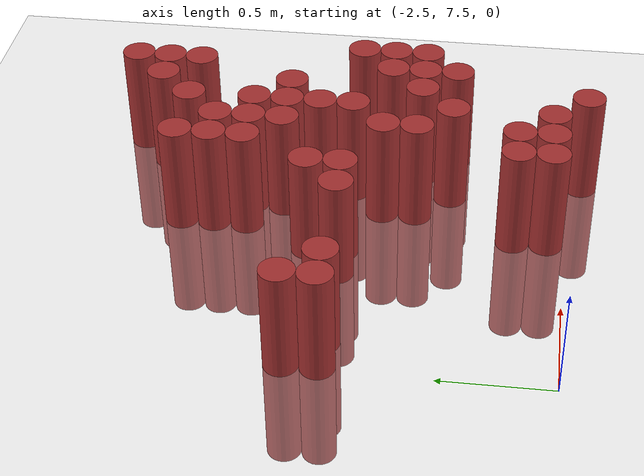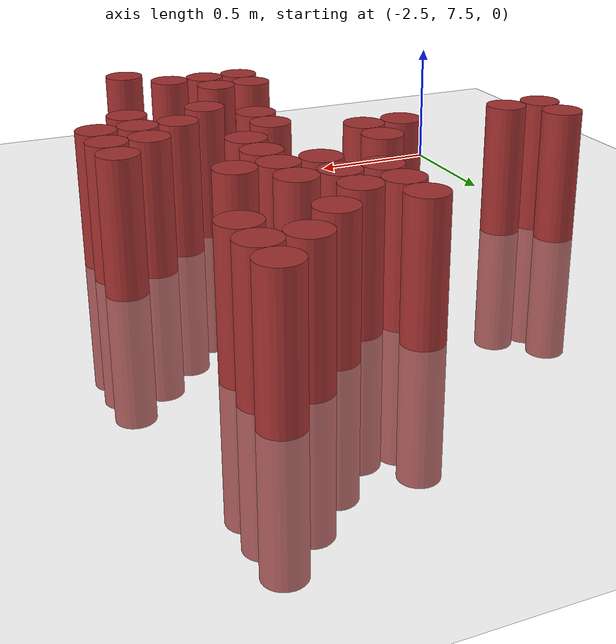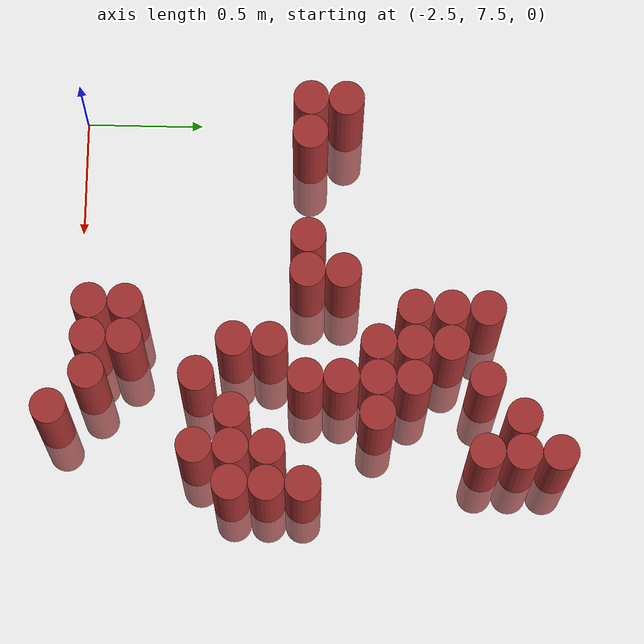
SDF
<sdf version="1.6">
 <world name="default">
  <model name="ground_plane">
   <static>1</static>
   <link name="link">
    <collision name="collision">
     <geometry><plane><normal>0 0 1</normal><size>100 100</size></plane></geometry>
     <surface><friction><ode><mu>100</mu><mu2>50</mu2></ode></friction></surface>
    </collision>
    <visual name="visual">
     <cast_shadows>0</cast_shadows>
     <geometry><plane><normal>0 0 1</normal><size>100 100</size></plane></geometry>
     <material>
      <script><uri>file://media/materials/scripts/gazebo.material</uri><name>Gazebo/Grey</name></script>
     </material>
    </visual>
   </link>
  </model>
  <model name="unit_cylinder_196">
   <static>1</static>
   <pose>-2.475000 8.475000 0.000000 0.000000 0.000000 0.000000</pose>
   <link name="link">
    <inertial>
     <mass>1</mass>
     <inertia><ixx>0.145833</ixx><ixy>0</ixy><ixz>0</ixz><iyy>0.145833</iyy><iyz>0</iyz><izz>0.125</izz></inertia>
    </inertial>
    <collision name="collision">
     <geometry><cylinder><radius>0.075000</radius><length>1</length></cylinder></geometry>
    </collision>
    <visual name="visual">
     <geometry><cylinder><radius>0.075000</radius><length>1</length></cylinder></geometry>
     <material>
      <ambient>0.648000 0.192000 0.192000 1</ambient>
      <diffuse>0.648000 0.192000 0.192000 1</diffuse>
     </material>
     <material>
      <script><name>Gazebo/Grey</name><uri>file://media/materials/scripts/gazebo.material</uri></script>
     </material>
    </visual>
    <sensor name="sensor_contact" type="contact"><contact><collision>collision</collision></contact></sensor>
   </link>
   <plugin filename="gz-sim-touchplugin-system" name="gz::sim::systems::TouchPlugin">
    <target>robot</target>
    <namespace>robot</namespace>
    <time>0.001</time>
    <enabled>true</enabled>
   </plugin>
  </model>
  <model name="unit_cylinder_197">
   <static>1</static>
   <pose>-2.475000 8.625000 0.000000 0.000000 0.000000 0.000000</pose>
   <link name="link">
    <inertial>
     <mass>1</mass>
     <inertia><ixx>0.145833</ixx><ixy>0</ixy><ixz>0</ixz><iyy>0.145833</iyy><iyz>0</iyz><izz>0.125</izz></inertia>
    </inertial>
    <collision name="collision">
     <geometry><cylinder><radius>0.075000</radius><length>1</length></cylinder></geometry>
    </collision>
    <visual name="visual">
     <geometry><cylinder><radius>0.075000</radius><length>1</length></cylinder></geometry>
     <material>
      <ambient>0.648000 0.192000 0.192000 1</ambient>
      <diffuse>0.648000 0.192000 0.192000 1</diffuse>
     </material>
     <material>
      <script><name>Gazebo/Grey</name><uri>file://media/materials/scripts/gazebo.material</uri></script>
     </material>
    </visual>
    <sensor name="sensor_contact" type="contact"><contact><collision>collision</collision></contact></sensor>
   </link>
   <plugin filename="gz-sim-touchplugin-system" name="gz::sim::systems::TouchPlugin">
    <target>robot</target>
    <namespace>robot</namespace>
    <time>0.001</time>
    <enabled>true</enabled>
   </plugin>
  </model>
  <model name="unit_cylinder_201">
   <static>1</static>
   <pose>-2.325000 8.475000 0.000000 0.000000 0.000000 0.000000</pose>
   <link name="link">
    <inertial>
     <mass>1</mass>
     <inertia><ixx>0.145833</ixx><ixy>0</ixy><ixz>0</ixz><iyy>0.145833</iyy><iyz>0</iyz><izz>0.125</izz></inertia>
    </inertial>
    <collision name="collision">
     <geometry><cylinder><radius>0.075000</radius><length>1</length></cylinder></geometry>
    </collision>
    <visual name="visual">
     <geometry><cylinder><radius>0.075000</radius><length>1</length></cylinder></geometry>
     <material>
      <ambient>0.648000 0.192000 0.192000 1</ambient>
      <diffuse>0.648000 0.192000 0.192000 1</diffuse>
     </material>
     <material>
      <script><name>Gazebo/Grey</name><uri>file://media/materials/scripts/gazebo.material</uri></script>
     </material>
    </visual>
    <sensor name="sensor_contact" type="contact"><contact><collision>collision</collision></contact></sensor>
   </link>
   <plugin filename="gz-sim-touchplugin-system" name="gz::sim::systems::TouchPlugin">
    <target>robot</target>
    <namespace>robot</namespace>
    <time>0.001</time>
    <enabled>true</enabled>
   </plugin>
  </model>
  <model name="unit_cylinder_217">
   <static>1</static>
   <pose>-1.875000 8.475000 0.000000 0.000000 0.000000 0.000000</pose>
   <link name="link">
    <inertial>
     <mass>1</mass>
     <inertia><ixx>0.145833</ixx><ixy>0</ixy><ixz>0</ixz><iyy>0.145833</iyy><iyz>0</iyz><izz>0.125</izz></inertia>
    </inertial>
    <collision name="collision">
     <geometry><cylinder><radius>0.075000</radius><length>1</length></cylinder></geometry>
    </collision>
    <visual name="visual">
     <geometry><cylinder><radius>0.075000</radius><length>1</length></cylinder></geometry>
     <material>
      <ambient>0.648000 0.192000 0.192000 1</ambient>
      <diffuse>0.648000 0.192000 0.192000 1</diffuse>
     </material>
     <material>
      <script><name>Gazebo/Grey</name><uri>file://media/materials/scripts/gazebo.material</uri></script>
     </material>
    </visual>
    <sensor name="sensor_contact" type="contact"><contact><collision>collision</collision></contact></sensor>
   </link>
   <plugin filename="gz-sim-touchplugin-system" name="gz::sim::systems::TouchPlugin">
    <target>robot</target>
    <namespace>robot</namespace>
    <time>0.001</time>
    <enabled>true</enabled>
   </plugin>
  </model>
  <model name="unit_cylinder_222">
   <static>1</static>
   <pose>-1.725000 8.475000 0.000000 0.000000 0.000000 0.000000</pose>
   <link name="link">
    <inertial>
     <mass>1</mass>
     <inertia><ixx>0.145833</ixx><ixy>0</ixy><ixz>0</ixz><iyy>0.145833</iyy><iyz>0</iyz><izz>0.125</izz></inertia>
    </inertial>
    <collision name="collision">
     <geometry><cylinder><radius>0.075000</radius><length>1</length></cylinder></geometry>
    </collision>
    <visual name="visual">
     <geometry><cylinder><radius>0.075000</radius><length>1</length></cylinder></geometry>
     <material>
      <ambient>0.648000 0.192000 0.192000 1</ambient>
      <diffuse>0.648000 0.192000 0.192000 1</diffuse>
     </material>
     <material>
      <script><name>Gazebo/Grey</name><uri>file://media/materials/scripts/gazebo.material</uri></script>
     </material>
    </visual>
    <sensor name="sensor_contact" type="contact"><contact><collision>collision</collision></contact></sensor>
   </link>
   <plugin filename="gz-sim-touchplugin-system" name="gz::sim::systems::TouchPlugin">
    <target>robot</target>
    <namespace>robot</namespace>
    <time>0.001</time>
    <enabled>true</enabled>
   </plugin>
  </model>
  <model name="unit_cylinder_223">
   <static>1</static>
   <pose>-1.725000 8.625000 0.000000 0.000000 0.000000 0.000000</pose>
   <link name="link">
    <inertial>
     <mass>1</mass>
     <inertia><ixx>0.145833</ixx><ixy>0</ixy><ixz>0</ixz><iyy>0.145833</iyy><iyz>0</iyz><izz>0.125</izz></inertia>
    </inertial>
    <collision name="collision">
     <geometry><cylinder><radius>0.075000</radius><length>1</length></cylinder></geometry>
    </collision>
    <visual name="visual">
     <geometry><cylinder><radius>0.075000</radius><length>1</length></cylinder></geometry>
     <material>
      <ambient>0.648000 0.192000 0.192000 1</ambient>
      <diffuse>0.648000 0.192000 0.192000 1</diffuse>
     </material>
     <material>
      <script><name>Gazebo/Grey</name><uri>file://media/materials/scripts/gazebo.material</uri></script>
     </material>
    </visual>
    <sensor name="sensor_contact" type="contact"><contact><collision>collision</collision></contact></sensor>
   </link>
   <plugin filename="gz-sim-touchplugin-system" name="gz::sim::systems::TouchPlugin">
    <target>robot</target>
    <namespace>robot</namespace>
    <time>0.001</time>
    <enabled>true</enabled>
   </plugin>
  </model>
  <model name="unit_cylinder_231">
   <static>1</static>
   <pose>-1.575000 7.575000 0.000000 0.000000 0.000000 0.000000</pose>
   <link name="link">
    <inertial>
     <mass>1</mass>
     <inertia><ixx>0.145833</ixx><ixy>0</ixy><ixz>0</ixz><iyy>0.145833</iyy><iyz>0</iyz><izz>0.125</izz></inertia>
    </inertial>
    <collision name="collision">
     <geometry><cylinder><radius>0.075000</radius><length>1</length></cylinder></geometry>
    </collision>
    <visual name="visual">
     <geometry><cylinder><radius>0.075000</radius><length>1</length></cylinder></geometry>
     <material>
      <ambient>0.648000 0.192000 0.192000 1</ambient>
      <diffuse>0.648000 0.192000 0.192000 1</diffuse>
     </material>
     <material>
      <script><name>Gazebo/Grey</name><uri>file://media/materials/scripts/gazebo.material</uri></script>
     </material>
    </visual>
    <sensor name="sensor_contact" type="contact"><contact><collision>collision</collision></contact></sensor>
   </link>
   <plugin filename="gz-sim-touchplugin-system" name="gz::sim::systems::TouchPlugin">
    <target>robot</target>
    <namespace>robot</namespace>
    <time>0.001</time>
    <enabled>true</enabled>
   </plugin>
  </model>
  <model name="unit_cylinder_232">
   <static>1</static>
   <pose>-1.575000 7.725000 0.000000 0.000000 0.000000 0.000000</pose>
   <link name="link">
    <inertial>
     <mass>1</mass>
     <inertia><ixx>0.145833</ixx><ixy>0</ixy><ixz>0</ixz><iyy>0.145833</iyy><iyz>0</iyz><izz>0.125</izz></inertia>
    </inertial>
    <collision name="collision">
     <geometry><cylinder><radius>0.075000</radius><length>1</length></cylinder></geometry>
    </collision>
    <visual name="visual">
     <geometry><cylinder><radius>0.075000</radius><length>1</length></cylinder></geometry>
     <material>
      <ambient>0.648000 0.192000 0.192000 1</ambient>
      <diffuse>0.648000 0.192000 0.192000 1</diffuse>
     </material>
     <material>
      <script><name>Gazebo/Grey</name><uri>file://media/materials/scripts/gazebo.material</uri></script>
     </material>
    </visual>
    <sensor name="sensor_contact" type="contact"><contact><collision>collision</collision></contact></sensor>
   </link>
   <plugin filename="gz-sim-touchplugin-system" name="gz::sim::systems::TouchPlugin">
    <target>robot</target>
    <namespace>robot</namespace>
    <time>0.001</time>
    <enabled>true</enabled>
   </plugin>
  </model>
  <model name="unit_cylinder_233">
   <static>1</static>
   <pose>-1.575000 8.925000 0.000000 0.000000 0.000000 0.000000</pose>
   <link name="link">
    <inertial>
     <mass>1</mass>
     <inertia><ixx>0.145833</ixx><ixy>0</ixy><ixz>0</ixz><iyy>0.145833</iyy><iyz>0</iyz><izz>0.125</izz></inertia>
    </inertial>
    <collision name="collision">
     <geometry><cylinder><radius>0.075000</radius><length>1</length></cylinder></geometry>
    </collision>
    <visual name="visual">
     <geometry><cylinder><radius>0.075000</radius><length>1</length></cylinder></geometry>
     <material>
      <ambient>0.648000 0.192000 0.192000 1</ambient>
      <diffuse>0.648000 0.192000 0.192000 1</diffuse>
     </material>
     <material>
      <script><name>Gazebo/Grey</name><uri>file://media/materials/scripts/gazebo.material</uri></script>
     </material>
    </visual>
    <sensor name="sensor_contact" type="contact"><contact><collision>collision</collision></contact></sensor>
   </link>
   <plugin filename="gz-sim-touchplugin-system" name="gz::sim::systems::TouchPlugin">
    <target>robot</target>
    <namespace>robot</namespace>
    <time>0.001</time>
    <enabled>true</enabled>
   </plugin>
  </model>
  <model name="unit_cylinder_234">
   <static>1</static>
   <pose>-1.575000 9.075000 0.000000 0.000000 0.000000 0.000000</pose>
   <link name="link">
    <inertial>
     <mass>1</mass>
     <inertia><ixx>0.145833</ixx><ixy>0</ixy><ixz>0</ixz><iyy>0.145833</iyy><iyz>0</iyz><izz>0.125</izz></inertia>
    </inertial>
    <collision name="collision">
     <geometry><cylinder><radius>0.075000</radius><length>1</length></cylinder></geometry>
    </collision>
    <visual name="visual">
     <geometry><cylinder><radius>0.075000</radius><length>1</length></cylinder></geometry>
     <material>
      <ambient>0.648000 0.192000 0.192000 1</ambient>
      <diffuse>0.648000 0.192000 0.192000 1</diffuse>
     </material>
     <material>
      <script><name>Gazebo/Grey</name><uri>file://media/materials/scripts/gazebo.material</uri></script>
     </material>
    </visual>
    <sensor name="sensor_contact" type="contact"><contact><collision>collision</collision></contact></sensor>
   </link>
   <plugin filename="gz-sim-touchplugin-system" name="gz::sim::systems::TouchPlugin">
    <target>robot</target>
    <namespace>robot</namespace>
    <time>0.001</time>
    <enabled>true</enabled>
   </plugin>
  </model>
  <model name="unit_cylinder_235">
   <static>1</static>
   <pose>-1.575000 9.225000 0.000000 0.000000 0.000000 0.000000</pose>
   <link name="link">
    <inertial>
     <mass>1</mass>
     <inertia><ixx>0.145833</ixx><ixy>0</ixy><ixz>0</ixz><iyy>0.145833</iyy><iyz>0</iyz><izz>0.125</izz></inertia>
    </inertial>
    <collision name="collision">
     <geometry><cylinder><radius>0.075000</radius><length>1</length></cylinder></geometry>
    </collision>
    <visual name="visual">
     <geometry><cylinder><radius>0.075000</radius><length>1</length></cylinder></geometry>
     <material>
      <ambient>0.648000 0.192000 0.192000 1</ambient>
      <diffuse>0.648000 0.192000 0.192000 1</diffuse>
     </material>
     <material>
      <script><name>Gazebo/Grey</name><uri>file://media/materials/scripts/gazebo.material</uri></script>
     </material>
    </visual>
    <sensor name="sensor_contact" type="contact"><contact><collision>collision</collision></contact></sensor>
   </link>
   <plugin filename="gz-sim-touchplugin-system" name="gz::sim::systems::TouchPlugin">
    <target>robot</target>
    <namespace>robot</namespace>
    <time>0.001</time>
    <enabled>true</enabled>
   </plugin>
  </model>
  <model name="unit_cylinder_239">
   <static>1</static>
   <pose>-1.425000 7.575000 0.000000 0.000000 0.000000 0.000000</pose>
   <link name="link">
    <inertial>
     <mass>1</mass>
     <inertia><ixx>0.145833</ixx><ixy>0</ixy><ixz>0</ixz><iyy>0.145833</iyy><iyz>0</iyz><izz>0.125</izz></inertia>
    </inertial>
    <collision name="collision">
     <geometry><cylinder><radius>0.075000</radius><length>1</length></cylinder></geometry>
    </collision>
    <visual name="visual">
     <geometry><cylinder><radius>0.075000</radius><length>1</length></cylinder></geometry>
     <material>
      <ambient>0.648000 0.192000 0.192000 1</ambient>
      <diffuse>0.648000 0.192000 0.192000 1</diffuse>
     </material>
     <material>
      <script><name>Gazebo/Grey</name><uri>file://media/materials/scripts/gazebo.material</uri></script>
     </material>
    </visual>
    <sensor name="sensor_contact" type="contact"><contact><collision>collision</collision></contact></sensor>
   </link>
   <plugin filename="gz-sim-touchplugin-system" name="gz::sim::systems::TouchPlugin">
    <target>robot</target>
    <namespace>robot</namespace>
    <time>0.001</time>
    <enabled>true</enabled>
   </plugin>
  </model>
  <model name="unit_cylinder_240">
   <static>1</static>
   <pose>-1.425000 7.725000 0.000000 0.000000 0.000000 0.000000</pose>
   <link name="link">
    <inertial>
     <mass>1</mass>
     <inertia><ixx>0.145833</ixx><ixy>0</ixy><ixz>0</ixz><iyy>0.145833</iyy><iyz>0</iyz><izz>0.125</izz></inertia>
    </inertial>
    <collision name="collision">
     <geometry><cylinder><radius>0.075000</radius><length>1</length></cylinder></geometry>
    </collision>
    <visual name="visual">
     <geometry><cylinder><radius>0.075000</radius><length>1</length></cylinder></geometry>
     <material>
      <ambient>0.648000 0.192000 0.192000 1</ambient>
      <diffuse>0.648000 0.192000 0.192000 1</diffuse>
     </material>
     <material>
      <script><name>Gazebo/Grey</name><uri>file://media/materials/scripts/gazebo.material</uri></script>
     </material>
    </visual>
    <sensor name="sensor_contact" type="contact"><contact><collision>collision</collision></contact></sensor>
   </link>
   <plugin filename="gz-sim-touchplugin-system" name="gz::sim::systems::TouchPlugin">
    <target>robot</target>
    <namespace>robot</namespace>
    <time>0.001</time>
    <enabled>true</enabled>
   </plugin>
  </model>
  <model name="unit_cylinder_241">
   <static>1</static>
   <pose>-1.425000 8.175000 0.000000 0.000000 0.000000 0.000000</pose>
   <link name="link">
    <inertial>
     <mass>1</mass>
     <inertia><ixx>0.145833</ixx><ixy>0</ixy><ixz>0</ixz><iyy>0.145833</iyy><iyz>0</iyz><izz>0.125</izz></inertia>
    </inertial>
    <collision name="collision">
     <geometry><cylinder><radius>0.075000</radius><length>1</length></cylinder></geometry>
    </collision>
    <visual name="visual">
     <geometry><cylinder><radius>0.075000</radius><length>1</length></cylinder></geometry>
     <material>
      <ambient>0.648000 0.192000 0.192000 1</ambient>
      <diffuse>0.648000 0.192000 0.192000 1</diffuse>
     </material>
     <material>
      <script><name>Gazebo/Grey</name><uri>file://media/materials/scripts/gazebo.material</uri></script>
     </material>
    </visual>
    <sensor name="sensor_contact" type="contact"><contact><collision>collision</collision></contact></sensor>
   </link>
   <plugin filename="gz-sim-touchplugin-system" name="gz::sim::systems::TouchPlugin">
    <target>robot</target>
    <namespace>robot</namespace>
    <time>0.001</time>
    <enabled>true</enabled>
   </plugin>
  </model>
  <model name="unit_cylinder_242">
   <static>1</static>
   <pose>-1.425000 8.325000 0.000000 0.000000 0.000000 0.000000</pose>
   <link name="link">
    <inertial>
     <mass>1</mass>
     <inertia><ixx>0.145833</ixx><ixy>0</ixy><ixz>0</ixz><iyy>0.145833</iyy><iyz>0</iyz><izz>0.125</izz></inertia>
    </inertial>
    <collision name="collision">
     <geometry><cylinder><radius>0.075000</radius><length>1</length></cylinder></geometry>
    </collision>
    <visual name="visual">
     <geometry><cylinder><radius>0.075000</radius><length>1</length></cylinder></geometry>
     <material>
      <ambient>0.648000 0.192000 0.192000 1</ambient>
      <diffuse>0.648000 0.192000 0.192000 1</diffuse>
     </material>
     <material>
      <script><name>Gazebo/Grey</name><uri>file://media/materials/scripts/gazebo.material</uri></script>
     </material>
    </visual>
    <sensor name="sensor_contact" type="contact"><contact><collision>collision</collision></contact></sensor>
   </link>
   <plugin filename="gz-sim-touchplugin-system" name="gz::sim::systems::TouchPlugin">
    <target>robot</target>
    <namespace>robot</namespace>
    <time>0.001</time>
    <enabled>true</enabled>
   </plugin>
  </model>
  <model name="unit_cylinder_243">
   <static>1</static>
   <pose>-1.425000 8.775000 0.000000 0.000000 0.000000 0.000000</pose>
   <link name="link">
    <inertial>
     <mass>1</mass>
     <inertia><ixx>0.145833</ixx><ixy>0</ixy><ixz>0</ixz><iyy>0.145833</iyy><iyz>0</iyz><izz>0.125</izz></inertia>
    </inertial>
    <collision name="collision">
     <geometry><cylinder><radius>0.075000</radius><length>1</length></cylinder></geometry>
    </collision>
    <visual name="visual">
     <geometry><cylinder><radius>0.075000</radius><length>1</length></cylinder></geometry>
     <material>
      <ambient>0.648000 0.192000 0.192000 1</ambient>
      <diffuse>0.648000 0.192000 0.192000 1</diffuse>
     </material>
     <material>
      <script><name>Gazebo/Grey</name><uri>file://media/materials/scripts/gazebo.material</uri></script>
     </material>
    </visual>
    <sensor name="sensor_contact" type="contact"><contact><collision>collision</collision></contact></sensor>
   </link>
   <plugin filename="gz-sim-touchplugin-system" name="gz::sim::systems::TouchPlugin">
    <target>robot</target>
    <namespace>robot</namespace>
    <time>0.001</time>
    <enabled>true</enabled>
   </plugin>
  </model>
  <model name="unit_cylinder_244">
   <static>1</static>
   <pose>-1.425000 8.925000 0.000000 0.000000 0.000000 0.000000</pose>
   <link name="link">
    <inertial>
     <mass>1</mass>
     <inertia><ixx>0.145833</ixx><ixy>0</ixy><ixz>0</ixz><iyy>0.145833</iyy><iyz>0</iyz><izz>0.125</izz></inertia>
    </inertial>
    <collision name="collision">
     <geometry><cylinder><radius>0.075000</radius><length>1</length></cylinder></geometry>
    </collision>
    <visual name="visual">
     <geometry><cylinder><radius>0.075000</radius><length>1</length></cylinder></geometry>
     <material>
      <ambient>0.648000 0.192000 0.192000 1</ambient>
      <diffuse>0.648000 0.192000 0.192000 1</diffuse>
     </material>
     <material>
      <script><name>Gazebo/Grey</name><uri>file://media/materials/scripts/gazebo.material</uri></script>
     </material>
    </visual>
    <sensor name="sensor_contact" type="contact"><contact><collision>collision</collision></contact></sensor>
   </link>
   <plugin filename="gz-sim-touchplugin-system" name="gz::sim::systems::TouchPlugin">
    <target>robot</target>
    <namespace>robot</namespace>
    <time>0.001</time>
    <enabled>true</enabled>
   </plugin>
  </model>
  <model name="unit_cylinder_245">
   <static>1</static>
   <pose>-1.425000 9.075000 0.000000 0.000000 0.000000 0.000000</pose>
   <link name="link">
    <inertial>
     <mass>1</mass>
     <inertia><ixx>0.145833</ixx><ixy>0</ixy><ixz>0</ixz><iyy>0.145833</iyy><iyz>0</iyz><izz>0.125</izz></inertia>
    </inertial>
    <collision name="collision">
     <geometry><cylinder><radius>0.075000</radius><length>1</length></cylinder></geometry>
    </collision>
    <visual name="visual">
     <geometry><cylinder><radius>0.075000</radius><length>1</length></cylinder></geometry>
     <material>
      <ambient>0.648000 0.192000 0.192000 1</ambient>
      <diffuse>0.648000 0.192000 0.192000 1</diffuse>
     </material>
     <material>
      <script><name>Gazebo/Grey</name><uri>file://media/materials/scripts/gazebo.material</uri></script>
     </material>
    </visual>
    <sensor name="sensor_contact" type="contact"><contact><collision>collision</collision></contact></sensor>
   </link>
   <plugin filename="gz-sim-touchplugin-system" name="gz::sim::systems::TouchPlugin">
    <target>robot</target>
    <namespace>robot</namespace>
    <time>0.001</time>
    <enabled>true</enabled>
   </plugin>
  </model>
  <model name="unit_cylinder_249">
   <static>1</static>
   <pose>-1.275000 7.575000 0.000000 0.000000 0.000000 0.000000</pose>
   <link name="link">
    <inertial>
     <mass>1</mass>
     <inertia><ixx>0.145833</ixx><ixy>0</ixy><ixz>0</ixz><iyy>0.145833</iyy><iyz>0</iyz><izz>0.125</izz></inertia>
    </inertial>
    <collision name="collision">
     <geometry><cylinder><radius>0.075000</radius><length>1</length></cylinder></geometry>
    </collision>
    <visual name="visual">
     <geometry><cylinder><radius>0.075000</radius><length>1</length></cylinder></geometry>
     <material>
      <ambient>0.648000 0.192000 0.192000 1</ambient>
      <diffuse>0.648000 0.192000 0.192000 1</diffuse>
     </material>
     <material>
      <script><name>Gazebo/Grey</name><uri>file://media/materials/scripts/gazebo.material</uri></script>
     </material>
    </visual>
    <sensor name="sensor_contact" type="contact"><contact><collision>collision</collision></contact></sensor>
   </link>
   <plugin filename="gz-sim-touchplugin-system" name="gz::sim::systems::TouchPlugin">
    <target>robot</target>
    <namespace>robot</namespace>
    <time>0.001</time>
    <enabled>true</enabled>
   </plugin>
  </model>
  <model name="unit_cylinder_250">
   <static>1</static>
   <pose>-1.275000 8.025000 0.000000 0.000000 0.000000 0.000000</pose>
   <link name="link">
    <inertial>
     <mass>1</mass>
     <inertia><ixx>0.145833</ixx><ixy>0</ixy><ixz>0</ixz><iyy>0.145833</iyy><iyz>0</iyz><izz>0.125</izz></inertia>
    </inertial>
    <collision name="collision">
     <geometry><cylinder><radius>0.075000</radius><length>1</length></cylinder></geometry>
    </collision>
    <visual name="visual">
     <geometry><cylinder><radius>0.075000</radius><length>1</length></cylinder></geometry>
     <material>
      <ambient>0.648000 0.192000 0.192000 1</ambient>
      <diffuse>0.648000 0.192000 0.192000 1</diffuse>
     </material>
     <material>
      <script><name>Gazebo/Grey</name><uri>file://media/materials/scripts/gazebo.material</uri></script>
     </material>
    </visual>
    <sensor name="sensor_contact" type="contact"><contact><collision>collision</collision></contact></sensor>
   </link>
   <plugin filename="gz-sim-touchplugin-system" name="gz::sim::systems::TouchPlugin">
    <target>robot</target>
    <namespace>robot</namespace>
    <time>0.001</time>
    <enabled>true</enabled>
   </plugin>
  </model>
  <model name="unit_cylinder_251">
   <static>1</static>
   <pose>-1.275000 8.475000 0.000000 0.000000 0.000000 0.000000</pose>
   <link name="link">
    <inertial>
     <mass>1</mass>
     <inertia><ixx>0.145833</ixx><ixy>0</ixy><ixz>0</ixz><iyy>0.145833</iyy><iyz>0</iyz><izz>0.125</izz></inertia>
    </inertial>
    <collision name="collision">
     <geometry><cylinder><radius>0.075000</radius><length>1</length></cylinder></geometry>
    </collision>
    <visual name="visual">
     <geometry><cylinder><radius>0.075000</radius><length>1</length></cylinder></geometry>
     <material>
      <ambient>0.648000 0.192000 0.192000 1</ambient>
      <diffuse>0.648000 0.192000 0.192000 1</diffuse>
     </material>
     <material>
      <script><name>Gazebo/Grey</name><uri>file://media/materials/scripts/gazebo.material</uri></script>
     </material>
    </visual>
    <sensor name="sensor_contact" type="contact"><contact><collision>collision</collision></contact></sensor>
   </link>
   <plugin filename="gz-sim-touchplugin-system" name="gz::sim::systems::TouchPlugin">
    <target>robot</target>
    <namespace>robot</namespace>
    <time>0.001</time>
    <enabled>true</enabled>
   </plugin>
  </model>
  <model name="unit_cylinder_252">
   <static>1</static>
   <pose>-1.275000 8.625000 0.000000 0.000000 0.000000 0.000000</pose>
   <link name="link">
    <inertial>
     <mass>1</mass>
     <inertia><ixx>0.145833</ixx><ixy>0</ixy><ixz>0</ixz><iyy>0.145833</iyy><iyz>0</iyz><izz>0.125</izz></inertia>
    </inertial>
    <collision name="collision">
     <geometry><cylinder><radius>0.075000</radius><length>1</length></cylinder></geometry>
    </collision>
    <visual name="visual">
     <geometry><cylinder><radius>0.075000</radius><length>1</length></cylinder></geometry>
     <material>
      <ambient>0.648000 0.192000 0.192000 1</ambient>
      <diffuse>0.648000 0.192000 0.192000 1</diffuse>
     </material>
     <material>
      <script><name>Gazebo/Grey</name><uri>file://media/materials/scripts/gazebo.material</uri></script>
     </material>
    </visual>
    <sensor name="sensor_contact" type="contact"><contact><collision>collision</collision></contact></sensor>
   </link>
   <plugin filename="gz-sim-touchplugin-system" name="gz::sim::systems::TouchPlugin">
    <target>robot</target>
    <namespace>robot</namespace>
    <time>0.001</time>
    <enabled>true</enabled>
   </plugin>
  </model>
  <model name="unit_cylinder_253">
   <static>1</static>
   <pose>-1.275000 8.775000 0.000000 0.000000 0.000000 0.000000</pose>
   <link name="link">
    <inertial>
     <mass>1</mass>
     <inertia><ixx>0.145833</ixx><ixy>0</ixy><ixz>0</ixz><iyy>0.145833</iyy><iyz>0</iyz><izz>0.125</izz></inertia>
    </inertial>
    <collision name="collision">
     <geometry><cylinder><radius>0.075000</radius><length>1</length></cylinder></geometry>
    </collision>
    <visual name="visual">
     <geometry><cylinder><radius>0.075000</radius><length>1</length></cylinder></geometry>
     <material>
      <ambient>0.648000 0.192000 0.192000 1</ambient>
      <diffuse>0.648000 0.192000 0.192000 1</diffuse>
     </material>
     <material>
      <script><name>Gazebo/Grey</name><uri>file://media/materials/scripts/gazebo.material</uri></script>
     </material>
    </visual>
    <sensor name="sensor_contact" type="contact"><contact><collision>collision</collision></contact></sensor>
   </link>
   <plugin filename="gz-sim-touchplugin-system" name="gz::sim::systems::TouchPlugin">
    <target>robot</target>
    <namespace>robot</namespace>
    <time>0.001</time>
    <enabled>true</enabled>
   </plugin>
  </model>
  <model name="unit_cylinder_254">
   <static>1</static>
   <pose>-1.275000 8.925000 0.000000 0.000000 0.000000 0.000000</pose>
   <link name="link">
    <inertial>
     <mass>1</mass>
     <inertia><ixx>0.145833</ixx><ixy>0</ixy><ixz>0</ixz><iyy>0.145833</iyy><iyz>0</iyz><izz>0.125</izz></inertia>
    </inertial>
    <collision name="collision">
     <geometry><cylinder><radius>0.075000</radius><length>1</length></cylinder></geometry>
    </collision>
    <visual name="visual">
     <geometry><cylinder><radius>0.075000</radius><length>1</length></cylinder></geometry>
     <material>
      <ambient>0.648000 0.192000 0.192000 1</ambient>
      <diffuse>0.648000 0.192000 0.192000 1</diffuse>
     </material>
     <material>
      <script><name>Gazebo/Grey</name><uri>file://media/materials/scripts/gazebo.material</uri></script>
     </material>
    </visual>
    <sensor name="sensor_contact" type="contact"><contact><collision>collision</collision></contact></sensor>
   </link>
   <plugin filename="gz-sim-touchplugin-system" name="gz::sim::systems::TouchPlugin">
    <target>robot</target>
    <namespace>robot</namespace>
    <time>0.001</time>
    <enabled>true</enabled>
   </plugin>
  </model>
  <model name="unit_cylinder_255">
   <static>1</static>
   <pose>-1.275000 9.225000 0.000000 0.000000 0.000000 0.000000</pose>
   <link name="link">
    <inertial>
     <mass>1</mass>
     <inertia><ixx>0.145833</ixx><ixy>0</ixy><ixz>0</ixz><iyy>0.145833</iyy><iyz>0</iyz><izz>0.125</izz></inertia>
    </inertial>
    <collision name="collision">
     <geometry><cylinder><radius>0.075000</radius><length>1</length></cylinder></geometry>
    </collision>
    <visual name="visual">
     <geometry><cylinder><radius>0.075000</radius><length>1</length></cylinder></geometry>
     <material>
      <ambient>0.648000 0.192000 0.192000 1</ambient>
      <diffuse>0.648000 0.192000 0.192000 1</diffuse>
     </material>
     <material>
      <script><name>Gazebo/Grey</name><uri>file://media/materials/scripts/gazebo.material</uri></script>
     </material>
    </visual>
    <sensor name="sensor_contact" type="contact"><contact><collision>collision</collision></contact></sensor>
   </link>
   <plugin filename="gz-sim-touchplugin-system" name="gz::sim::systems::TouchPlugin">
    <target>robot</target>
    <namespace>robot</namespace>
    <time>0.001</time>
    <enabled>true</enabled>
   </plugin>
  </model>
  <model name="unit_cylinder_256">
   <static>1</static>
   <pose>-1.125000 7.425000 0.000000 0.000000 0.000000 0.000000</pose>
   <link name="link">
    <inertial>
     <mass>1</mass>
     <inertia><ixx>0.145833</ixx><ixy>0</ixy><ixz>0</ixz><iyy>0.145833</iyy><iyz>0</iyz><izz>0.125</izz></inertia>
    </inertial>
    <collision name="collision">
     <geometry><cylinder><radius>0.075000</radius><length>1</length></cylinder></geometry>
    </collision>
    <visual name="visual">
     <geometry><cylinder><radius>0.075000</radius><length>1</length></cylinder></geometry>
     <material>
      <ambient>0.648000 0.192000 0.192000 1</ambient>
      <diffuse>0.648000 0.192000 0.192000 1</diffuse>
     </material>
     <material>
      <script><name>Gazebo/Grey</name><uri>file://media/materials/scripts/gazebo.material</uri></script>
     </material>
    </visual>
    <sensor name="sensor_contact" type="contact"><contact><collision>collision</collision></contact></sensor>
   </link>
   <plugin filename="gz-sim-touchplugin-system" name="gz::sim::systems::TouchPlugin">
    <target>robot</target>
    <namespace>robot</namespace>
    <time>0.001</time>
    <enabled>true</enabled>
   </plugin>
  </model>
  <model name="unit_cylinder_257">
   <static>1</static>
   <pose>-1.125000 8.175000 0.000000 0.000000 0.000000 0.000000</pose>
   <link name="link">
    <inertial>
     <mass>1</mass>
     <inertia><ixx>0.145833</ixx><ixy>0</ixy><ixz>0</ixz><iyy>0.145833</iyy><iyz>0</iyz><izz>0.125</izz></inertia>
    </inertial>
    <collision name="collision">
     <geometry><cylinder><radius>0.075000</radius><length>1</length></cylinder></geometry>
    </collision>
    <visual name="visual">
     <geometry><cylinder><radius>0.075000</radius><length>1</length></cylinder></geometry>
     <material>
      <ambient>0.648000 0.192000 0.192000 1</ambient>
      <diffuse>0.648000 0.192000 0.192000 1</diffuse>
     </material>
     <material>
      <script><name>Gazebo/Grey</name><uri>file://media/materials/scripts/gazebo.material</uri></script>
     </material>
    </visual>
    <sensor name="sensor_contact" type="contact"><contact><collision>collision</collision></contact></sensor>
   </link>
   <plugin filename="gz-sim-touchplugin-system" name="gz::sim::systems::TouchPlugin">
    <target>robot</target>
    <namespace>robot</namespace>
    <time>0.001</time>
    <enabled>true</enabled>
   </plugin>
  </model>
  <model name="unit_cylinder_258">
   <static>1</static>
   <pose>-1.125000 8.775000 0.000000 0.000000 0.000000 0.000000</pose>
   <link name="link">
    <inertial>
     <mass>1</mass>
     <inertia><ixx>0.145833</ixx><ixy>0</ixy><ixz>0</ixz><iyy>0.145833</iyy><iyz>0</iyz><izz>0.125</izz></inertia>
    </inertial>
    <collision name="collision">
     <geometry><cylinder><radius>0.075000</radius><length>1</length></cylinder></geometry>
    </collision>
    <visual name="visual">
     <geometry><cylinder><radius>0.075000</radius><length>1</length></cylinder></geometry>
     <material>
      <ambient>0.648000 0.192000 0.192000 1</ambient>
      <diffuse>0.648000 0.192000 0.192000 1</diffuse>
     </material>
     <material>
      <script><name>Gazebo/Grey</name><uri>file://media/materials/scripts/gazebo.material</uri></script>
     </material>
    </visual>
    <sensor name="sensor_contact" type="contact"><contact><collision>collision</collision></contact></sensor>
   </link>
   <plugin filename="gz-sim-touchplugin-system" name="gz::sim::systems::TouchPlugin">
    <target>robot</target>
    <namespace>robot</namespace>
    <time>0.001</time>
    <enabled>true</enabled>
   </plugin>
  </model>
  <model name="unit_cylinder_259">
   <static>1</static>
   <pose>-1.125000 9.375000 0.000000 0.000000 0.000000 0.000000</pose>
   <link name="link">
    <inertial>
     <mass>1</mass>
     <inertia><ixx>0.145833</ixx><ixy>0</ixy><ixz>0</ixz><iyy>0.145833</iyy><iyz>0</iyz><izz>0.125</izz></inertia>
    </inertial>
    <collision name="collision">
     <geometry><cylinder><radius>0.075000</radius><length>1</length></cylinder></geometry>
    </collision>
    <visual name="visual">
     <geometry><cylinder><radius>0.075000</radius><length>1</length></cylinder></geometry>
     <material>
      <ambient>0.648000 0.192000 0.192000 1</ambient>
      <diffuse>0.648000 0.192000 0.192000 1</diffuse>
     </material>
     <material>
      <script><name>Gazebo/Grey</name><uri>file://media/materials/scripts/gazebo.material</uri></script>
     </material>
    </visual>
    <sensor name="sensor_contact" type="contact"><contact><collision>collision</collision></contact></sensor>
   </link>
   <plugin filename="gz-sim-touchplugin-system" name="gz::sim::systems::TouchPlugin">
    <target>robot</target>
    <namespace>robot</namespace>
    <time>0.001</time>
    <enabled>true</enabled>
   </plugin>
  </model>
  <model name="unit_cylinder_260">
   <static>1</static>
   <pose>-0.975000 8.025000 0.000000 0.000000 0.000000 0.000000</pose>
   <link name="link">
    <inertial>
     <mass>1</mass>
     <inertia><ixx>0.145833</ixx><ixy>0</ixy><ixz>0</ixz><iyy>0.145833</iyy><iyz>0</iyz><izz>0.125</izz></inertia>
    </inertial>
    <collision name="collision">
     <geometry><cylinder><radius>0.075000</radius><length>1</length></cylinder></geometry>
    </collision>
    <visual name="visual">
     <geometry><cylinder><radius>0.075000</radius><length>1</length></cylinder></geometry>
     <material>
      <ambient>0.648000 0.192000 0.192000 1</ambient>
      <diffuse>0.648000 0.192000 0.192000 1</diffuse>
     </material>
     <material>
      <script><name>Gazebo/Grey</name><uri>file://media/materials/scripts/gazebo.material</uri></script>
     </material>
    </visual>
    <sensor name="sensor_contact" type="contact"><contact><collision>collision</collision></contact></sensor>
   </link>
   <plugin filename="gz-sim-touchplugin-system" name="gz::sim::systems::TouchPlugin">
    <target>robot</target>
    <namespace>robot</namespace>
    <time>0.001</time>
    <enabled>true</enabled>
   </plugin>
  </model>
  <model name="unit_cylinder_261">
   <static>1</static>
   <pose>-0.975000 8.175000 0.000000 0.000000 0.000000 0.000000</pose>
   <link name="link">
    <inertial>
     <mass>1</mass>
     <inertia><ixx>0.145833</ixx><ixy>0</ixy><ixz>0</ixz><iyy>0.145833</iyy><iyz>0</iyz><izz>0.125</izz></inertia>
    </inertial>
    <collision name="collision">
     <geometry><cylinder><radius>0.075000</radius><length>1</length></cylinder></geometry>
    </collision>
    <visual name="visual">
     <geometry><cylinder><radius>0.075000</radius><length>1</length></cylinder></geometry>
     <material>
      <ambient>0.648000 0.192000 0.192000 1</ambient>
      <diffuse>0.648000 0.192000 0.192000 1</diffuse>
     </material>
     <material>
      <script><name>Gazebo/Grey</name><uri>file://media/materials/scripts/gazebo.material</uri></script>
     </material>
    </visual>
    <sensor name="sensor_contact" type="contact"><contact><collision>collision</collision></contact></sensor>
   </link>
   <plugin filename="gz-sim-touchplugin-system" name="gz::sim::systems::TouchPlugin">
    <target>robot</target>
    <namespace>robot</namespace>
    <time>0.001</time>
    <enabled>true</enabled>
   </plugin>
  </model>
  <model name="unit_cylinder_262">
   <static>1</static>
   <pose>-0.975000 8.325000 0.000000 0.000000 0.000000 0.000000</pose>
   <link name="link">
    <inertial>
     <mass>1</mass>
     <inertia><ixx>0.145833</ixx><ixy>0</ixy><ixz>0</ixz><iyy>0.145833</iyy><iyz>0</iyz><izz>0.125</izz></inertia>
    </inertial>
    <collision name="collision">
     <geometry><cylinder><radius>0.075000</radius><length>1</length></cylinder></geometry>
    </collision>
    <visual name="visual">
     <geometry><cylinder><radius>0.075000</radius><length>1</length></cylinder></geometry>
     <material>
      <ambient>0.648000 0.192000 0.192000 1</ambient>
      <diffuse>0.648000 0.192000 0.192000 1</diffuse>
     </material>
     <material>
      <script><name>Gazebo/Grey</name><uri>file://media/materials/scripts/gazebo.material</uri></script>
     </material>
    </visual>
    <sensor name="sensor_contact" type="contact"><contact><collision>collision</collision></contact></sensor>
   </link>
   <plugin filename="gz-sim-touchplugin-system" name="gz::sim::systems::TouchPlugin">
    <target>robot</target>
    <namespace>robot</namespace>
    <time>0.001</time>
    <enabled>true</enabled>
   </plugin>
  </model>
  <model name="unit_cylinder_263">
   <static>1</static>
   <pose>-0.975000 9.225000 0.000000 0.000000 0.000000 0.000000</pose>
   <link name="link">
    <inertial>
     <mass>1</mass>
     <inertia><ixx>0.145833</ixx><ixy>0</ixy><ixz>0</ixz><iyy>0.145833</iyy><iyz>0</iyz><izz>0.125</izz></inertia>
    </inertial>
    <collision name="collision">
     <geometry><cylinder><radius>0.075000</radius><length>1</length></cylinder></geometry>
    </collision>
    <visual name="visual">
     <geometry><cylinder><radius>0.075000</radius><length>1</length></cylinder></geometry>
     <material>
      <ambient>0.648000 0.192000 0.192000 1</ambient>
      <diffuse>0.648000 0.192000 0.192000 1</diffuse>
     </material>
     <material>
      <script><name>Gazebo/Grey</name><uri>file://media/materials/scripts/gazebo.material</uri></script>
     </material>
    </visual>
    <sensor name="sensor_contact" type="contact"><contact><collision>collision</collision></contact></sensor>
   </link>
   <plugin filename="gz-sim-touchplugin-system" name="gz::sim::systems::TouchPlugin">
    <target>robot</target>
    <namespace>robot</namespace>
    <time>0.001</time>
    <enabled>true</enabled>
   </plugin>
  </model>
  <model name="unit_cylinder_264">
   <static>1</static>
   <pose>-0.975000 9.375000 0.000000 0.000000 0.000000 0.000000</pose>
   <link name="link">
    <inertial>
     <mass>1</mass>
     <inertia><ixx>0.145833</ixx><ixy>0</ixy><ixz>0</ixz><iyy>0.145833</iyy><iyz>0</iyz><izz>0.125</izz></inertia>
    </inertial>
    <collision name="collision">
     <geometry><cylinder><radius>0.075000</radius><length>1</length></cylinder></geometry>
    </collision>
    <visual name="visual">
     <geometry><cylinder><radius>0.075000</radius><length>1</length></cylinder></geometry>
     <material>
      <ambient>0.648000 0.192000 0.192000 1</ambient>
      <diffuse>0.648000 0.192000 0.192000 1</diffuse>
     </material>
     <material>
      <script><name>Gazebo/Grey</name><uri>file://media/materials/scripts/gazebo.material</uri></script>
     </material>
    </visual>
    <sensor name="sensor_contact" type="contact"><contact><collision>collision</collision></contact></sensor>
   </link>
   <plugin filename="gz-sim-touchplugin-system" name="gz::sim::systems::TouchPlugin">
    <target>robot</target>
    <namespace>robot</namespace>
    <time>0.001</time>
    <enabled>true</enabled>
   </plugin>
  </model>
  <model name="unit_cylinder_265">
   <static>1</static>
   <pose>-0.975000 9.525000 0.000000 0.000000 0.000000 0.000000</pose>
   <link name="link">
    <inertial>
     <mass>1</mass>
     <inertia><ixx>0.145833</ixx><ixy>0</ixy><ixz>0</ixz><iyy>0.145833</iyy><iyz>0</iyz><izz>0.125</izz></inertia>
    </inertial>
    <collision name="collision">
     <geometry><cylinder><radius>0.075000</radius><length>1</length></cylinder></geometry>
    </collision>
    <visual name="visual">
     <geometry><cylinder><radius>0.075000</radius><length>1</length></cylinder></geometry>
     <material>
      <ambient>0.648000 0.192000 0.192000 1</ambient>
      <diffuse>0.648000 0.192000 0.192000 1</diffuse>
     </material>
     <material>
      <script><name>Gazebo/Grey</name><uri>file://media/materials/scripts/gazebo.material</uri></script>
     </material>
    </visual>
    <sensor name="sensor_contact" type="contact"><contact><collision>collision</collision></contact></sensor>
   </link>
   <plugin filename="gz-sim-touchplugin-system" name="gz::sim::systems::TouchPlugin">
    <target>robot</target>
    <namespace>robot</namespace>
    <time>0.001</time>
    <enabled>true</enabled>
   </plugin>
  </model>
  <model name="unit_cylinder_268">
   <static>1</static>
   <pose>-0.825000 8.175000 0.000000 0.000000 0.000000 0.000000</pose>
   <link name="link">
    <inertial>
     <mass>1</mass>
     <inertia><ixx>0.145833</ixx><ixy>0</ixy><ixz>0</ixz><iyy>0.145833</iyy><iyz>0</iyz><izz>0.125</izz></inertia>
    </inertial>
    <collision name="collision">
     <geometry><cylinder><radius>0.075000</radius><length>1</length></cylinder></geometry>
    </collision>
    <visual name="visual">
     <geometry><cylinder><radius>0.075000</radius><length>1</length></cylinder></geometry>
     <material>
      <ambient>0.648000 0.192000 0.192000 1</ambient>
      <diffuse>0.648000 0.192000 0.192000 1</diffuse>
     </material>
     <material>
      <script><name>Gazebo/Grey</name><uri>file://media/materials/scripts/gazebo.material</uri></script>
     </material>
    </visual>
    <sensor name="sensor_contact" type="contact"><contact><collision>collision</collision></contact></sensor>
   </link>
   <plugin filename="gz-sim-touchplugin-system" name="gz::sim::systems::TouchPlugin">
    <target>robot</target>
    <namespace>robot</namespace>
    <time>0.001</time>
    <enabled>true</enabled>
   </plugin>
  </model>
  <model name="unit_cylinder_269">
   <static>1</static>
   <pose>-0.825000 8.325000 0.000000 0.000000 0.000000 0.000000</pose>
   <link name="link">
    <inertial>
     <mass>1</mass>
     <inertia><ixx>0.145833</ixx><ixy>0</ixy><ixz>0</ixz><iyy>0.145833</iyy><iyz>0</iyz><izz>0.125</izz></inertia>
    </inertial>
    <collision name="collision">
     <geometry><cylinder><radius>0.075000</radius><length>1</length></cylinder></geometry>
    </collision>
    <visual name="visual">
     <geometry><cylinder><radius>0.075000</radius><length>1</length></cylinder></geometry>
     <material>
      <ambient>0.648000 0.192000 0.192000 1</ambient>
      <diffuse>0.648000 0.192000 0.192000 1</diffuse>
     </material>
     <material>
      <script><name>Gazebo/Grey</name><uri>file://media/materials/scripts/gazebo.material</uri></script>
     </material>
    </visual>
    <sensor name="sensor_contact" type="contact"><contact><collision>collision</collision></contact></sensor>
   </link>
   <plugin filename="gz-sim-touchplugin-system" name="gz::sim::systems::TouchPlugin">
    <target>robot</target>
    <namespace>robot</namespace>
    <time>0.001</time>
    <enabled>true</enabled>
   </plugin>
  </model>
  <model name="unit_cylinder_270">
   <static>1</static>
   <pose>-0.825000 8.475000 0.000000 0.000000 0.000000 0.000000</pose>
   <link name="link">
    <inertial>
     <mass>1</mass>
     <inertia><ixx>0.145833</ixx><ixy>0</ixy><ixz>0</ixz><iyy>0.145833</iyy><iyz>0</iyz><izz>0.125</izz></inertia>
    </inertial>
    <collision name="collision">
     <geometry><cylinder><radius>0.075000</radius><length>1</length></cylinder></geometry>
    </collision>
    <visual name="visual">
     <geometry><cylinder><radius>0.075000</radius><length>1</length></cylinder></geometry>
     <material>
      <ambient>0.648000 0.192000 0.192000 1</ambient>
      <diffuse>0.648000 0.192000 0.192000 1</diffuse>
     </material>
     <material>
      <script><name>Gazebo/Grey</name><uri>file://media/materials/scripts/gazebo.material</uri></script>
     </material>
    </visual>
    <sensor name="sensor_contact" type="contact"><contact><collision>collision</collision></contact></sensor>
   </link>
   <plugin filename="gz-sim-touchplugin-system" name="gz::sim::systems::TouchPlugin">
    <target>robot</target>
    <namespace>robot</namespace>
    <time>0.001</time>
    <enabled>true</enabled>
   </plugin>
  </model>
 </world>
</sdf>
